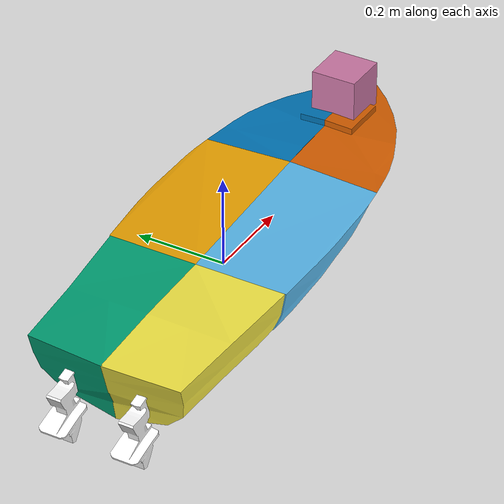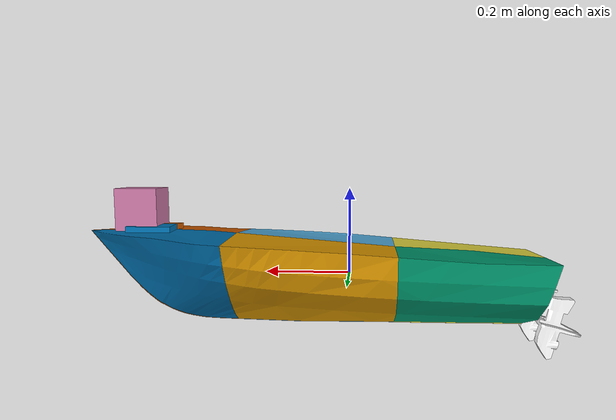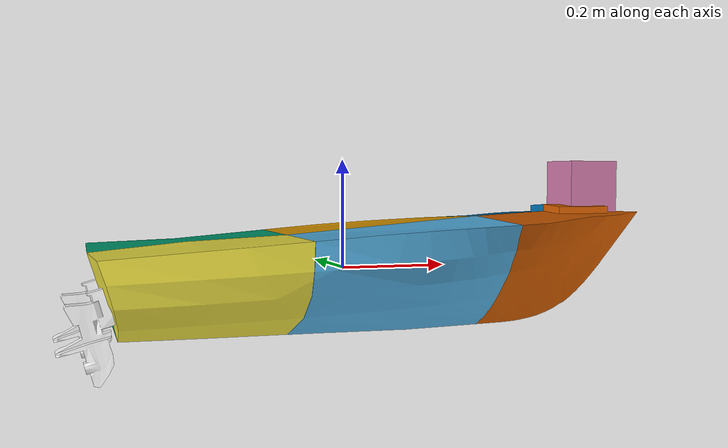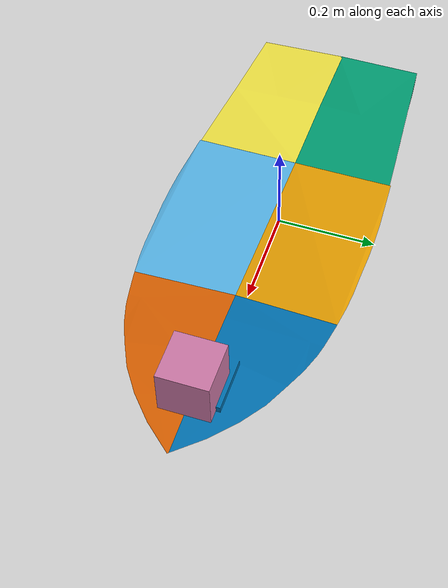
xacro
<?xml version="1.0"?>

<robot name="diffboat" xmlns:xacro="http://www.ros.org/wiki/xacro">

    <xacro:arg name="windType" default="global" />
    <xacro:arg name="waterType" default="global" />
    <xacro:property name="windType" value="$(arg windType)" />
    <xacro:property name="waterType" value="$(arg waterType)" />
    <xacro:property name="dampingXYZ" value="1.88 10 6.66" />
    <xacro:property name="angularDampingXYZ" value="2 15 2" />
    <xacro:property name="extraPayload" value="3" />
    <xacro:include filename="$(find usv_sim)/xacro/boat_subdivided_validation2.xacro" />

    <!-- Plugin list -->
    <gazebo>
        <plugin name="freefloating_gazebo_control" filename="libfreefloating_gazebo_control.so">
            <switchService>switch</switchService>
            <updateRate>100</updateRate>
            <link>fwd_left</link>
            <thruster>
				<effortUnderWater>11.5</effortUnderWater>
				<effortOverWater>0</effortOverWater>
                <name>fwd_left</name>
            </thruster>
   	    <thruster>
	        <effortUnderWater>11.5</effortUnderWater>
				<effortOverWater>0</effortOverWater>
	        <name>fwd_right</name>
	    </thruster>
        </plugin>
    </gazebo>

    <!-- Define two steering thrusters, with assumed force control in Z-direction -->

    <xacro:thruster_link name="fwd_left"  xyz="-0.3 0 -0.1" rpy="0 ${-PI/2-0.26} 0" rotationAxis="1 0 0" lowerLimit="0" upperLimit="0" parentLink="back_l_link"/>
    <xacro:thruster_link name="fwd_right" xyz="-0.3 0 -0.1" rpy="0 ${-PI/2-0.26} 0" rotationAxis="1 0 0" lowerLimit="0" upperLimit="0" parentLink="back_r_link"/>

</robot>

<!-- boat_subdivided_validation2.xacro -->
<xacro xmlns:xacro="http://www.ros.org/wiki/xacro">

    <xacro:property name="PI" value="3.1415926535897931"/>

    <!-- Body properties -->
    <xacro:property name="front_body_mass" value="0.5"/>
    <xacro:property name="back_body_mass" value="2"/>
    <xacro:property name="middle_body_mass" value="2"/>
    <xacro:property name="back_water_displaced_mass" value="10"/>
    <xacro:property name="middle_water_displaced_mass" value="10"/>
    <xacro:property name="front_water_displaced_mass" value="5"/>
    <xacro:property name="scale" value="0.21"/>
    <xacro:property name="bl1" value=".1" />
    <xacro:property name="bl2" value=".1" />

    <link name="base_link">
        <visual>
          <origin rpy="0 0 0" xyz="0 0 0"/>
          <geometry>
            <mesh filename="package://usv_sim/meshes/simpleHull3/base_link.dae" scale="${scale} ${scale} ${scale}"/>
          </geometry>
        </visual>
        <collision>
          <origin rpy="0 0 0" xyz="0 0 0"/>
          <geometry>
            <mesh filename="package://usv_sim/meshes/simpleHull3/base_link.dae" scale="${scale} ${scale} ${scale}"/>
          </geometry>
        </collision>

        <inertial>
            <origin rpy="0 0 0" xyz="${0.35*scale} ${0.44*scale} ${-0.2*scale}"/>
          <mass value="${middle_body_mass+extraPayload/2}"/>
          <inertia ixx="0.1" ixy="0.0" ixz="0.0" iyy="1.4" iyz="0.0" izz="1.4"/>
        </inertial>
        <buoyancy>
			<compensation>${middle_water_displaced_mass/middle_body_mass}</compensation>
			<origin xyz="${0.35*scale} ${0.44*scale} ${-0.15*scale}"/>
			<limit radius="0.1"/>
			<damping rpy="${angularDampingXYZ}" xyz="${dampingXYZ}"/>
         	<windVelocity>${windType}</windVelocity>
			<frontal_area>0.0</frontal_area>
			<lateral_area>0.012</lateral_area>
			<lateral_length>1.06</lateral_length>
	  		<waterVelocity>${waterType}</waterVelocity>
        </buoyancy>
    </link>

    <link name="center_r_link">
    	<visual>
          <origin rpy="0 0 0"  xyz="0 0 ${0*scale}"/>
          <geometry>
            <mesh filename="package://usv_sim/meshes/simpleHull3/centerRight.dae" scale="${scale} ${scale} ${scale}"/>
          </geometry>
        </visual>

        <collision>
          <origin rpy="0 0 0"  xyz="0 0 ${0*scale}"/>
          <geometry>
           	<mesh filename="package://usv_sim/meshes/simpleHull3/centerRight.dae" scale="${scale} ${scale} ${scale}"/>
          </geometry>
        </collision>

        <inertial>
            <origin rpy="0 0 0" xyz="${0.35*scale} ${-0.44*scale} ${-0.2*scale}"/>
          <mass value="${middle_body_mass+extraPayload/2}"/>
          <inertia ixx="0.1" ixy="0.0" ixz="0.0" iyy="1.4" iyz="0.0" izz="1.4"/>
        </inertial>
        <buoyancy>
          <compensation>${middle_water_displaced_mass/middle_body_mass}</compensation>
          <origin xyz="${0.35*scale} ${-0.44*scale} ${-0.15*scale}"/>
          <limit radius="0.1"/>
          <damping rpy="${angularDampingXYZ}" xyz="${dampingXYZ}"/>
			<windVelocity>${windType}</windVelocity>
			<frontal_area>0.0</frontal_area>
			<lateral_area>0.012</lateral_area>
			<lateral_length>1.06</lateral_length>
	  <waterVelocity>${waterType}</waterVelocity>
        </buoyancy>
    </link>

    <joint name="center_r_joint" type="revolute">
        <parent link="base_link"/>
        <child link="center_r_link"/>
        <origin rpy="0 0 0" xyz="0 0 0"/>
	<limit effort="50" velocity="5" lower="0" upper="0" />
            <dynamics damping="1.0"/>
            <axis xyz="1 0 0"/>
    </joint>

    <link name="back_l_link">
        <visual>
          <origin rpy="0 0 0"  xyz="0 0 0"/>
          <geometry>
           	<mesh filename="package://usv_sim/meshes/simpleHull3/backLeft.dae" scale="${scale} ${scale} ${scale}"/>
          </geometry>
        </visual>
        <collision>
          <origin rpy="0 0 0"  xyz="0 0 0"/>
          <geometry>
           	<mesh filename="package://usv_sim/meshes/simpleHull3/backLeft.dae" scale="${scale} ${scale} ${scale}"/>
          </geometry>
        </collision>

        <inertial>
            <origin rpy="0 0 0" xyz="${-0.6*scale} 0 ${-0.2*scale}"/>
          <mass value="${back_body_mass}"/>
          <inertia ixx="0.1" ixy="0.0" ixz="0.0" iyy="1.4" iyz="0.0" izz="1.4"/>
        </inertial>
        <buoyancy>
			<compensation>${back_water_displaced_mass/back_body_mass}</compensation>
			<origin xyz="${-0.6*scale} 0 ${-0.15*scale}"/>
			<limit radius="0.1"/>
			<damping rpy="${angularDampingXYZ}" xyz="${dampingXYZ}"/>
			<windVelocity>${windType}</windVelocity>
			<frontal_area>0.02</frontal_area>
			<lateral_area>0.012</lateral_area>
			<lateral_length>1.06</lateral_length>
	  		<waterVelocity>${waterType}</waterVelocity>
        </buoyancy>
    </link>

    <joint name="back_l_joint" type="revolute">
        <parent link="base_link"/>
        <child link="back_l_link"/>
        <origin rpy="0 0 0" xyz="${-0.5*scale} ${0.39*scale} 0"/>
	<limit effort="50" velocity="5" lower="0" upper="0" />
            <dynamics damping="1.0"/>
            <axis xyz="1 0 0"/>
    </joint>

    <link name="back_r_link">
    	<visual>
          <origin rpy="0 0 0"  xyz="0 0 0"/>
          <geometry>
           	<mesh filename="package://usv_sim/meshes/simpleHull3/backRight.dae" scale="${scale} ${scale} ${scale}"/>
          </geometry>
    	</visual>
        <collision>
          <origin rpy="0 0 0"  xyz="0 0 0"/>
          <geometry>
           	<mesh filename="package://usv_sim/meshes/simpleHull3/backRight.dae" scale="${scale} ${scale} ${scale}"/>
          </geometry>
        </collision>

        <inertial>
            <origin rpy="0 0 0" xyz="${-0.6*scale} 0 ${-0.2*scale}"/>
          <mass value="${back_body_mass}"/>
          <inertia ixx="0.1" ixy="0.0" ixz="0.0" iyy="1.4" iyz="0.0" izz="1.4"/>
        </inertial>
        <buoyancy>
          	<compensation>${back_water_displaced_mass/back_body_mass}</compensation>
          	<origin xyz="${-0.6*scale} 0 ${-0.15*scale}"/>
          	<limit radius="0.1"/>
          	<damping rpy="${angularDampingXYZ}" xyz="${dampingXYZ}"/>
          	<windVelocity>${windType}</windVelocity>
			<frontal_area>0.02</frontal_area>
			<lateral_area>0.012</lateral_area>
			<lateral_length>1.06</lateral_length>
	  		<waterVelocity>${waterType}</waterVelocity>
        </buoyancy>
    </link>

    <joint name="back_r_joint" type="revolute">
        <parent link="base_link"/>
        <child link="back_r_link"/>
        <origin rpy="0 0 0" xyz="${-0.5*scale} ${-0.39*scale} 0"/>
	<limit effort="50" velocity="5" lower="0" upper="0" />
            <dynamics damping="1.0"/>
            <axis xyz="1 0 0"/>
    </joint>

    <link name="front_l_link">
    	<visual>
    	<origin rpy="0 0 0"  xyz="0 0 0"/>
          <geometry>
           	<mesh filename="package://usv_sim/meshes/simpleHull3/frontLeft.dae" scale="${scale} ${scale} ${scale}"/>
          </geometry>
    	</visual>
        <collision>
          <origin rpy="0 0 0"  xyz="0 0 0"/>
          <geometry>
           	<mesh filename="package://usv_sim/meshes/simpleHull3/frontLeft.dae" scale="${scale} ${scale} ${scale}"/>
          </geometry>
        </collision>

        <inertial>
            <origin rpy="0 0 0" xyz="${0.4*scale} 0 ${-0.1*scale}"/>
          <mass value="${front_body_mass}"/>
          <inertia ixx="0.1" ixy="0.0" ixz="0.0" iyy="1.4" iyz="0.0" izz="1.4"/>
        </inertial>
        <buoyancy>
          	<compensation>${front_water_displaced_mass/front_body_mass}</compensation>
          	<origin xyz="${0.4*scale} 0 ${-0.05*scale}"/>
          	<limit radius="0.1"/>
          	<damping rpy="${angularDampingXYZ}" xyz="${dampingXYZ}"/>
          	<windVelocity>${windType}</windVelocity>
			<frontal_area>0.02</frontal_area>
			<lateral_area>0.006</lateral_area>
			<lateral_length>1.06</lateral_length>
	  		<waterVelocity>${waterType}</waterVelocity>
        </buoyancy>
    </link>

    <joint name="front_l_joint" type="revolute">
        <parent link="base_link"/>
        <child link="front_l_link"/>
        <origin rpy="0 0 0" xyz="${1.3*scale} ${0.2*scale} 0"/>
	<limit effort="50" velocity="5" lower="0" upper="0" />
            <dynamics damping="1.0"/>
            <axis xyz="1 0 0"/>
    </joint>

    <link name="front_r_link">
    	<visual>
    		<origin rpy="0 0 0"  xyz="0 0 0"/>
          <geometry>
           	<mesh filename="package://usv_sim/meshes/simpleHull3/frontRight.dae" scale="${scale} ${scale} ${scale}"/>
          </geometry>
        </visual>
        <collision>
          <origin rpy="0 0 0"  xyz="${0*scale} ${0*scale} 0"/>
          <geometry>
           	<mesh filename="package://usv_sim/meshes/simpleHull3/frontRight.dae" scale="${scale} ${scale} ${scale}"/>
          </geometry>
        </collision>

        <inertial>
            <origin rpy="0 0 0" xyz="${0.4*scale} 0 ${-0.1*scale}"/>
          <mass value="${front_body_mass}"/>
          <inertia ixx="0.1" ixy="0.0" ixz="0.0" iyy="1.4" iyz="0.0" izz="1.4"/>
        </inertial>
        <buoyancy>
          <compensation>${front_water_displaced_mass/front_body_mass}</compensation>
          <origin xyz="${0.4*scale} 0 ${-0.05*scale}"/>
          <limit radius="0.1"/>
          <damping rpy="${angularDampingXYZ}" xyz="${dampingXYZ}"/>
          <windVelocity>${windType}</windVelocity>
	  	  <waterVelocity>${waterType}</waterVelocity>
	  	  <frontal_area>0.02</frontal_area>
		  <lateral_area>0.006</lateral_area>
		  <lateral_length>1.06</lateral_length>
        </buoyancy>
    </link>

    <joint name="front_r_joint" type="revolute">
        <parent link="base_link"/>
        <child link="front_r_link"/>
        <origin rpy="0 0 0" xyz="${1.3*scale} ${-0.2*scale} 0"/>
	<limit effort="50" velocity="5" lower="0" upper="0" />
            <dynamics damping="1.0"/>
            <axis xyz="1 0 0"/>
    </joint>

    <!-- Thruster link -->
    <xacro:macro name="thruster_link" params="name xyz rpy rotationAxis effort:=50 velocity:=5 lowerLimit upperLimit parentLink:=back_r_link">
        <joint name="${name}_joint" type="revolute">
            <parent link="${parentLink}"/>
            <child link="${name}"/>
            <origin rpy="${rpy}" xyz="${xyz}"/>
            <dynamics damping="1.0"/>
            <axis xyz="${rotationAxis}"/>
            <limit effort="${effort}" velocity="${velocity}" lower="${lowerLimit}" upper="${upperLimit}" />
        </joint>

        <link name="${name}">
	    	<collision>
          		<origin xyz="${-0.15*scale} 0 ${0*scale}" rpy="0 0 0"/>
          		<geometry>
          		    <mesh filename="package://usv_sim/meshes/simpleHull3/thruster.dae" scale="${scale} ${scale} ${scale}"/>
          		</geometry>
        	</collision>

            <visual name="${name}">
                <origin xyz="${-0.15*scale} 0 ${0*scale}" rpy="0 0 0" />
                <geometry>
                    <mesh filename="package://usv_sim/meshes/simpleHull3/thruster.dae" scale="${scale} ${scale} ${scale}"/>
                </geometry>
                <material name="black">
                    <color rgba="255 255 255 1"/>
                </material>
            </visual>

            <inertial>
                <mass value="0.1"/>
                <origin xyz="${-0.2*scale} 0 ${0.3*scale}" rpy="0 0 0" />
                <inertia
                    ixx=".1"
                    ixy="0.0"
                    ixz="0.0"
                    iyy=".1"
                    iyz="0.0"
                    izz=".1"/>
            </inertial>
            <buoyancy>
				<compensation>0.8</compensation>
	        	<windVelocity>${windType}</windVelocity>
				<waterVelocity>${waterType}</waterVelocity>
			</buoyancy>
        </link>

        <gazebo reference="${name}">
            <material>Gazebo/Black</material>
        </gazebo>
    </xacro:macro>

    <xacro:macro name="thruster_dummy_link" params="name xyz rpy">
        <joint name="${name}" type="fixed">
            <parent link="base_link"/>
            <child link="${name}"/>
            <origin rpy="${rpy}" xyz="${xyz}"/>
        </joint>
        <link name="${name}"/>
    </xacro:macro>

    <!-- Thruster link -->
    <xacro:macro name="airthruster_link" params="name xyz rpy rotationAxis effort:=100 velocity:=20 lowerLimit upperLimit parentLink:=back_r_link">
        <joint name="${name}_joint" type="revolute">
            <parent link="${parentLink}"/>
            <child link="${name}"/>
            <origin rpy="${rpy}" xyz="${xyz}"/>
            <dynamics damping="10.0"/>
            <axis xyz="${rotationAxis}"/>
            <limit effort="${effort}" velocity="${velocity}" lower="${lowerLimit}" upper="${upperLimit}" />
        </joint>

        <link name="${name}">
	    	<collision>
          		<origin xyz="0 0 0" rpy="0 0 0"/>
          		<geometry>
          			<box size="${bl1} ${bl1} ${bl2}" />
          		</geometry>
        	</collision>

            <visual name="${name}">
                <origin xyz="0 0 0" rpy="0 0 0" />
                <geometry>
                    	<mesh filename="package://usv_sim/meshes/simpleHull3/airPropeller.dae" scale="${scale} ${scale} ${scale}"/>
                </geometry>
            </visual>

            <inertial>
                <mass value=".1"/>
                <inertia
                    ixx=".1"
                    ixy="0.0"
                    ixz="0.0"
                    iyy=".1"
                    iyz="0.0"
                    izz=".1"/>
            </inertial>
        </link>

        <gazebo reference="${name}">
            <material>Gazebo/Black</material>
        </gazebo>
    </xacro:macro>

    <xacro:macro name="thruster_dummy_link" params="name xyz rpy">
        <joint name="${name}" type="fixed">
            <parent link="base_link"/>
            <child link="${name}"/>
            <origin rpy="${rpy}" xyz="${xyz}"/>
        </joint>
        <link name="${name}"/>
    </xacro:macro>

    <!-- Rudder link -->
    <xacro:macro name="rudder_xacro">
        <link name="rudder">
            <inertial>
                <mass value="1" />
                <inertia
                  ixx="0.05"
                  ixy="0.0"
                  iyy="0.05"
                  ixz="0.0"
                  iyz="0.0"
                  izz="0.005"/>
            </inertial>

            <collision name="collision">
                <geometry>
                  <box size="${0.2*scale} ${0.02*scale} ${0.3*scale}" />
                </geometry>
                <origin rpy="0 0 0" xyz="${-0.1*scale} 0 0"/>
            </collision>

            <visual name="visual">
                <geometry>

                  <mesh filename="package://usv_sim/meshes/simpleHull3/box.dae" scale="${0.2*scale} ${0.02*scale} ${0.3*scale}"/>

                </geometry>
                <origin rpy="0 0 0" xyz="${-0.1*scale} 0 0"/>

            </visual>

        </link>

        <joint name="rudder_joint" type="revolute">
            <parent link="back_r_link"/>
            <child link="rudder"/>
            <origin rpy="0 0 0" xyz="${-1.4*scale} ${0.39*scale} ${-0.5*scale}"/>
            <dynamics damping="1.0"/>
            <axis xyz="0 0 1"/>
            <limit effort="100" velocity="5" lower="-${PI/2}" upper="${PI/2}" />
        </joint>
    </xacro:macro>

    <!-- Sensors -->

    <!-- Hokuyo Laser -->
    <joint name="hokuyo_joint" type="revolute">
        <axis xyz="0 1 0" />
        <origin xyz="0.50 0 0.15" rpy="0 0 0"/>
        <parent link="base_link"/>
        <child link="hokuyo_link"/>
        <limit effort="100" velocity="5" lower="0" upper="0" />
    </joint>

    <link name="hokuyo_link">
        <collision name="collision">
	        <origin xyz="0 0 0" rpy="0 0 0"/>
	        <geometry>
	        	<box size="0.1 0.1 0.1"/>
	        </geometry>
        </collision>

        <visual name="visual">
        	<origin xyz="0 0 0" rpy="0 0 0"/>
        	<geometry>
        		<mesh filename="package://usv_sim/meshes/simpleHull3/box.dae" scale="0.1 0.1 0.1"/>

        	</geometry>

        </visual>

        <inertial>
        <mass value="1e-5" />
        <origin xyz="0 0 0" rpy="0 0 0"/>
        <inertia ixx="1e-6" ixy="0" ixz="0" iyy="1e-6" iyz="0" izz="1e-6" />
        </inertial>
    </link>

    <gazebo reference="hokuyo_link">
        <sensor type="gpu_ray" name="head_hokuyo_sensor">
        <pose>0 0 0 0 0 0</pose>
        <visualize>false</visualize>
        <update_rate>40</update_rate>
        <ray>
        <scan>
        <horizontal>
        <samples>720</samples>
        <resolution>1</resolution>
        <min_angle>-1.570796</min_angle>
        <max_angle>1.570796</max_angle>
        </horizontal>
        </scan>
        <range>
        <min>0.10</min>
        <max>30.0</max>
        <resolution>0.01</resolution>
        </range>
        <noise>
        <type>gaussian</type>
        <mean>0.0</mean>
        <stddev>0.01</stddev>
        </noise>
        </ray>
        <plugin name="gazebo_ros_head_hokuyo_controller" filename="libgazebo_ros_gpu_laser.so">
        <topicName>scan</topicName>
        <frameName>base_laser</frameName>
        </plugin>
        </sensor>
    </gazebo>

</xacro>
